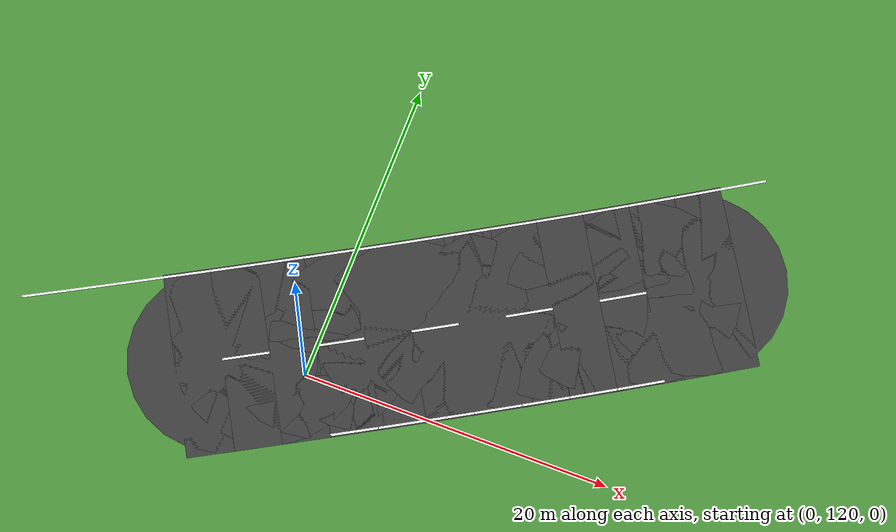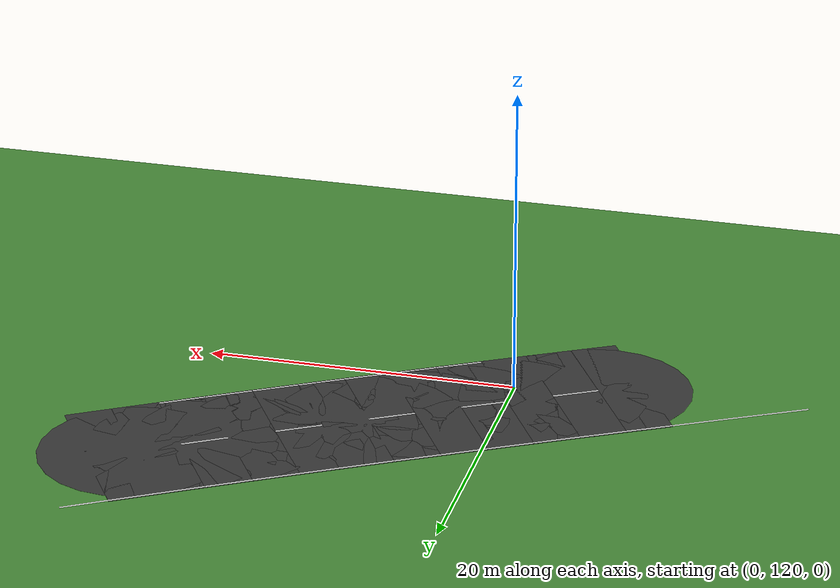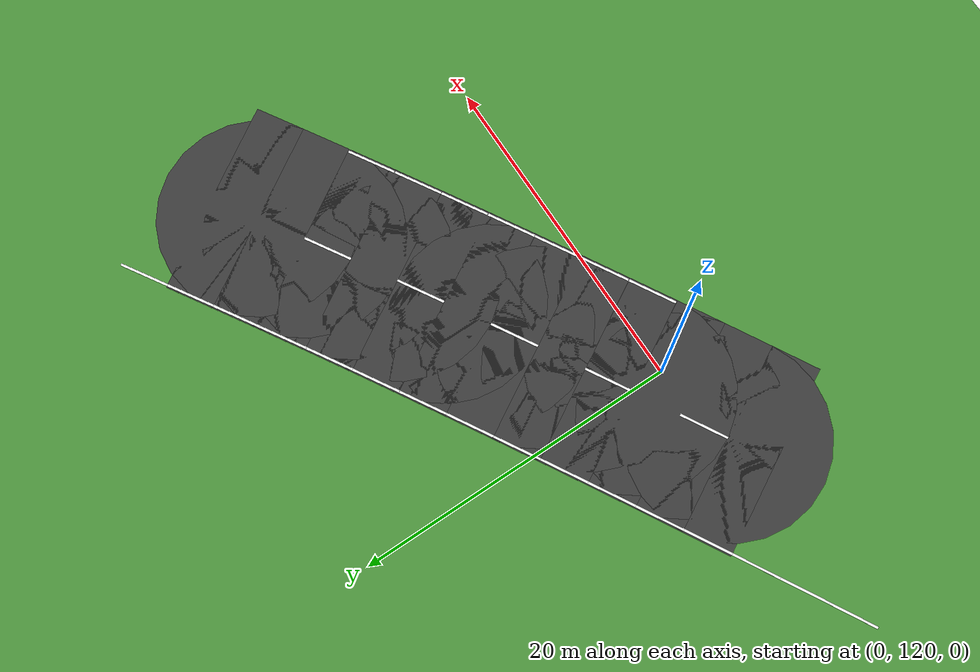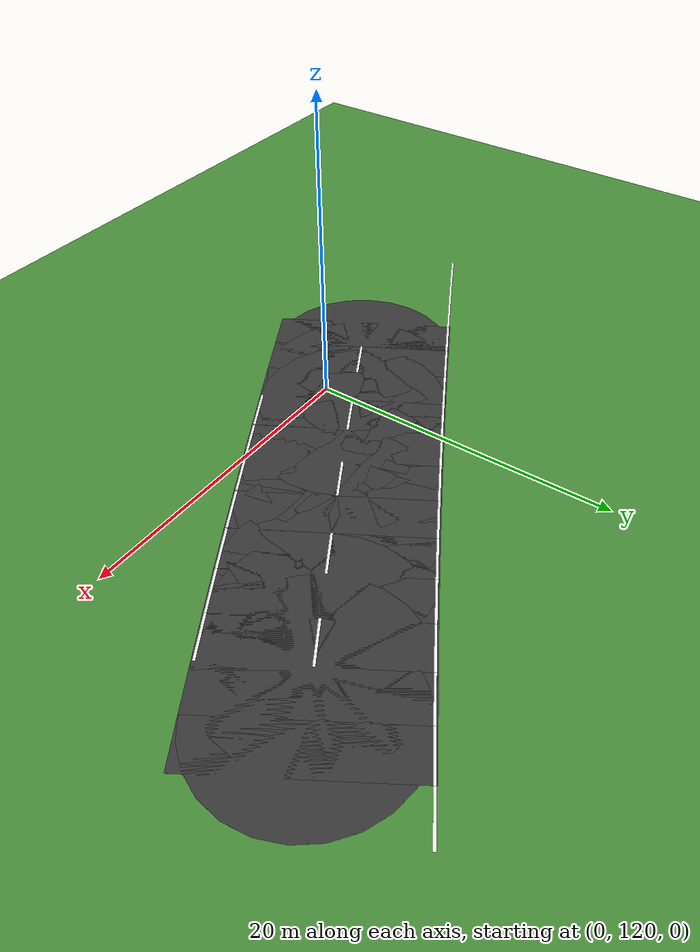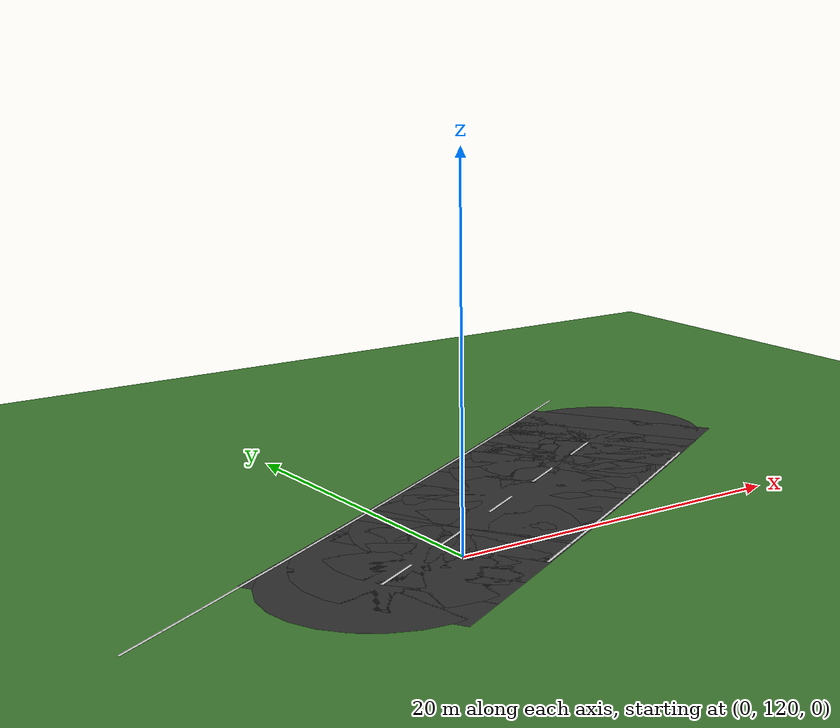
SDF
<sdf version="1.6">
 <world name="sem_silesia_ring_2026">
  <model name="ground_plane">
   <static>true</static>
   <link name="link">
    <collision name="collision">
     <geometry><plane><normal>0 0 1</normal><size>1200 1200</size></plane></geometry>
     <surface><friction><ode><mu>0.6</mu><mu2>0.6</mu2></ode></friction></surface>
    </collision>
    <visual name="visual">
     <geometry><plane><normal>0 0 1</normal><size>1200 1200</size></plane></geometry>
     <material><ambient>0.28 0.55 0.22 1</ambient><diffuse>0.28 0.55 0.22 1</diffuse></material>
    </visual>
   </link>
  </model>
  <model name="wl_R_s311">
   <static>true</static>
   <pose>21.3945 141.5919 0.0070 0 0 -2.5862</pose>
   <link name="link">
    <visual name="v">
     <geometry><box><size>3.0025 0.1500 0.0080</size></box></geometry>
     <material><ambient>0.95 0.95 0.95 1</ambient><diffuse>0.95 0.95 0.95 1</diffuse></material>
    </visual>
   </link>
  </model>
  <model name="road_s312">
   <static>true</static>
   <pose>21.9260 135.0409 0.0030 0 0 -2.5885</pose>
   <link name="link">
    <visual name="v">
     <geometry><box><size>3.0025 12.0000 0.0060</size></box></geometry>
     <material><ambient>0.22 0.22 0.22 1</ambient><diffuse>0.22 0.22 0.22 1</diffuse></material>
    </visual>
    <collision name="c">
     <geometry><box><size>3.0025 12.0000 0.0060</size></box></geometry>
     <surface><friction><ode><mu>0.9</mu><mu2>0.9</mu2></ode></friction></surface>
    </collision>
   </link>
  </model>
  <model name="wl_R_s312">
   <static>true</static>
   <pose>18.8527 140.0186 0.0070 0 0 -2.5885</pose>
   <link name="link">
    <visual name="v">
     <geometry><box><size>3.0025 0.1500 0.0080</size></box></geometry>
     <material><ambient>0.95 0.95 0.95 1</ambient><diffuse>0.95 0.95 0.95 1</diffuse></material>
    </visual>
   </link>
  </model>
  <model name="road_s313">
   <static>true</static>
   <pose>19.3685 133.4679 0.0030 0 0 -2.5919</pose>
   <link name="link">
    <visual name="v">
     <geometry><box><size>3.0025 12.0000 0.0060</size></box></geometry>
     <material><ambient>0.22 0.22 0.22 1</ambient><diffuse>0.22 0.22 0.22 1</diffuse></material>
    </visual>
    <collision name="c">
     <geometry><box><size>3.0025 12.0000 0.0060</size></box></geometry>
     <surface><friction><ode><mu>0.9</mu><mu2>0.9</mu2></ode></friction></surface>
    </collision>
   </link>
  </model>
  <model name="road_jnt313">
   <static>true</static>
   <pose>20.6486 134.2522 0.0030 0 0 0</pose>
   <link name="link">
    <visual name="v">
     <geometry><cylinder><radius>6.0000</radius><length>0.0060</length></cylinder></geometry>
     <material><ambient>0.22 0.22 0.22 1</ambient><diffuse>0.22 0.22 0.22 1</diffuse></material>
    </visual>
    <collision name="c">
     <geometry><cylinder><radius>6.0000</radius><length>0.0060</length></cylinder></geometry>
     <surface><friction><ode><mu>0.9</mu><mu2>0.9</mu2></ode></friction></surface>
    </collision>
   </link>
  </model>
  <model name="wl_R_s313">
   <static>true</static>
   <pose>16.3122 138.4560 0.0070 0 0 -2.5919</pose>
   <link name="link">
    <visual name="v">
     <geometry><box><size>3.0025 0.1500 0.0080</size></box></geometry>
     <material><ambient>0.95 0.95 0.95 1</ambient><diffuse>0.95 0.95 0.95 1</diffuse></material>
    </visual>
   </link>
  </model>
  <model name="road_s314">
   <static>true</static>
   <pose>16.8048 131.9050 0.0030 0 0 -2.5964</pose>
   <link name="link">
    <visual name="v">
     <geometry><box><size>3.0025 12.0000 0.0060</size></box></geometry>
     <material><ambient>0.22 0.22 0.22 1</ambient><diffuse>0.22 0.22 0.22 1</diffuse></material>
    </visual>
    <collision name="c">
     <geometry><box><size>3.0025 12.0000 0.0060</size></box></geometry>
     <surface><friction><ode><mu>0.9</mu><mu2>0.9</mu2></ode></friction></surface>
    </collision>
   </link>
  </model>
  <model name="road_jnt314">
   <static>true</static>
   <pose>18.0884 132.6836 0.0030 0 0 0</pose>
   <link name="link">
    <visual name="v">
     <geometry><cylinder><radius>6.0000</radius><length>0.0060</length></cylinder></geometry>
     <material><ambient>0.22 0.22 0.22 1</ambient><diffuse>0.22 0.22 0.22 1</diffuse></material>
    </visual>
    <collision name="c">
     <geometry><cylinder><radius>6.0000</radius><length>0.0060</length></cylinder></geometry>
     <surface><friction><ode><mu>0.9</mu><mu2>0.9</mu2></ode></friction></surface>
    </collision>
   </link>
  </model>
  <model name="wl_L_s314">
   <static>true</static>
   <pose>19.8384 126.9031 0.0070 0 0 -2.5964</pose>
   <link name="link">
    <visual name="v">
     <geometry><box><size>3.0025 0.1500 0.0080</size></box></geometry>
     <material><ambient>0.95 0.95 0.95 1</ambient><diffuse>0.95 0.95 0.95 1</diffuse></material>
    </visual>
   </link>
  </model>
  <model name="wl_R_s314">
   <static>true</static>
   <pose>13.7711 136.9070 0.0070 0 0 -2.5964</pose>
   <link name="link">
    <visual name="v">
     <geometry><box><size>3.0025 0.1500 0.0080</size></box></geometry>
     <material><ambient>0.95 0.95 0.95 1</ambient><diffuse>0.95 0.95 0.95 1</diffuse></material>
    </visual>
   </link>
  </model>
  <model name="cd_s314">
   <static>true</static>
   <pose>16.8048 131.9050 0.0070 0 0 -2.5964</pose>
   <link name="link">
    <visual name="v">
     <geometry><box><size>3.0025 0.1500 0.0080</size></box></geometry>
     <material><ambient>0.95 0.95 0.95 1</ambient><diffuse>0.95 0.95 0.95 1</diffuse></material>
    </visual>
   </link>
  </model>
  <model name="road_s315">
   <static>true</static>
   <pose>14.2337 130.3543 0.0030 0 0 -2.6013</pose>
   <link name="link">
    <visual name="v">
     <geometry><box><size>3.0025 12.0000 0.0060</size></box></geometry>
     <material><ambient>0.22 0.22 0.22 1</ambient><diffuse>0.22 0.22 0.22 1</diffuse></material>
    </visual>
    <collision name="c">
     <geometry><box><size>3.0025 12.0000 0.0060</size></box></geometry>
     <surface><friction><ode><mu>0.9</mu><mu2>0.9</mu2></ode></friction></surface>
    </collision>
   </link>
  </model>
  <model name="road_jnt315">
   <static>true</static>
   <pose>15.5211 131.1265 0.0030 0 0 0</pose>
   <link name="link">
    <visual name="v">
     <geometry><cylinder><radius>6.0000</radius><length>0.0060</length></cylinder></geometry>
     <material><ambient>0.22 0.22 0.22 1</ambient><diffuse>0.22 0.22 0.22 1</diffuse></material>
    </visual>
    <collision name="c">
     <geometry><cylinder><radius>6.0000</radius><length>0.0060</length></cylinder></geometry>
     <surface><friction><ode><mu>0.9</mu><mu2>0.9</mu2></ode></friction></surface>
    </collision>
   </link>
  </model>
  <model name="wl_L_s315">
   <static>true</static>
   <pose>17.2427 125.3375 0.0070 0 0 -2.6013</pose>
   <link name="link">
    <visual name="v">
     <geometry><box><size>3.0025 0.1500 0.0080</size></box></geometry>
     <material><ambient>0.95 0.95 0.95 1</ambient><diffuse>0.95 0.95 0.95 1</diffuse></material>
    </visual>
   </link>
  </model>
  <model name="wl_R_s315">
   <static>true</static>
   <pose>11.2247 135.3711 0.0070 0 0 -2.6013</pose>
   <link name="link">
    <visual name="v">
     <geometry><box><size>3.0025 0.1500 0.0080</size></box></geometry>
     <material><ambient>0.95 0.95 0.95 1</ambient><diffuse>0.95 0.95 0.95 1</diffuse></material>
    </visual>
   </link>
  </model>
  <model name="road_s316">
   <static>true</static>
   <pose>11.6552 128.8159 0.0030 0 0 -2.6060</pose>
   <link name="link">
    <visual name="v">
     <geometry><box><size>3.0025 12.0000 0.0060</size></box></geometry>
     <material><ambient>0.22 0.22 0.22 1</ambient><diffuse>0.22 0.22 0.22 1</diffuse></material>
    </visual>
    <collision name="c">
     <geometry><box><size>3.0025 12.0000 0.0060</size></box></geometry>
     <surface><friction><ode><mu>0.9</mu><mu2>0.9</mu2></ode></friction></surface>
    </collision>
   </link>
  </model>
  <model name="road_jnt316">
   <static>true</static>
   <pose>12.9462 129.5821 0.0030 0 0 0</pose>
   <link name="link">
    <visual name="v">
     <geometry><cylinder><radius>6.0000</radius><length>0.0060</length></cylinder></geometry>
     <material><ambient>0.22 0.22 0.22 1</ambient><diffuse>0.22 0.22 0.22 1</diffuse></material>
    </visual>
    <collision name="c">
     <geometry><cylinder><radius>6.0000</radius><length>0.0060</length></cylinder></geometry>
     <surface><friction><ode><mu>0.9</mu><mu2>0.9</mu2></ode></friction></surface>
    </collision>
   </link>
  </model>
  <model name="wl_L_s316">
   <static>true</static>
   <pose>14.6409 123.7852 0.0070 0 0 -2.6060</pose>
   <link name="link">
    <visual name="v">
     <geometry><box><size>3.0025 0.1500 0.0080</size></box></geometry>
     <material><ambient>0.95 0.95 0.95 1</ambient><diffuse>0.95 0.95 0.95 1</diffuse></material>
    </visual>
   </link>
  </model>
  <model name="wl_R_s316">
   <static>true</static>
   <pose>8.6696 133.8467 0.0070 0 0 -2.6060</pose>
   <link name="link">
    <visual name="v">
     <geometry><box><size>3.0025 0.1500 0.0080</size></box></geometry>
     <material><ambient>0.95 0.95 0.95 1</ambient><diffuse>0.95 0.95 0.95 1</diffuse></material>
    </visual>
   </link>
  </model>
  <model name="cd_s316">
   <static>true</static>
   <pose>11.6552 128.8159 0.0070 0 0 -2.6060</pose>
   <link name="link">
    <visual name="v">
     <geometry><box><size>3.0025 0.1500 0.0080</size></box></geometry>
     <material><ambient>0.95 0.95 0.95 1</ambient><diffuse>0.95 0.95 0.95 1</diffuse></material>
    </visual>
   </link>
  </model>
  <model name="road_s317">
   <static>true</static>
   <pose>9.0698 127.2892 0.0030 0 0 -2.6103</pose>
   <link name="link">
    <visual name="v">
     <geometry><box><size>3.0025 12.0000 0.0060</size></box></geometry>
     <material><ambient>0.22 0.22 0.22 1</ambient><diffuse>0.22 0.22 0.22 1</diffuse></material>
    </visual>
    <collision name="c">
     <geometry><box><size>3.0025 12.0000 0.0060</size></box></geometry>
     <surface><friction><ode><mu>0.9</mu><mu2>0.9</mu2></ode></friction></surface>
    </collision>
   </link>
  </model>
  <model name="road_jnt317">
   <static>true</static>
   <pose>10.3642 128.0497 0.0030 0 0 0</pose>
   <link name="link">
    <visual name="v">
     <geometry><cylinder><radius>6.0000</radius><length>0.0060</length></cylinder></geometry>
     <material><ambient>0.22 0.22 0.22 1</ambient><diffuse>0.22 0.22 0.22 1</diffuse></material>
    </visual>
    <collision name="c">
     <geometry><cylinder><radius>6.0000</radius><length>0.0060</length></cylinder></geometry>
     <surface><friction><ode><mu>0.9</mu><mu2>0.9</mu2></ode></friction></surface>
    </collision>
   </link>
  </model>
  <model name="wl_L_s317">
   <static>true</static>
   <pose>12.0335 122.2454 0.0070 0 0 -2.6103</pose>
   <link name="link">
    <visual name="v">
     <geometry><box><size>3.0025 0.1500 0.0080</size></box></geometry>
     <material><ambient>0.95 0.95 0.95 1</ambient><diffuse>0.95 0.95 0.95 1</diffuse></material>
    </visual>
   </link>
  </model>
  <model name="wl_R_s317">
   <static>true</static>
   <pose>6.1062 132.3329 0.0070 0 0 -2.6103</pose>
   <link name="link">
    <visual name="v">
     <geometry><box><size>3.0025 0.1500 0.0080</size></box></geometry>
     <material><ambient>0.95 0.95 0.95 1</ambient><diffuse>0.95 0.95 0.95 1</diffuse></material>
    </visual>
   </link>
  </model>
  <model name="road_s318">
   <static>true</static>
   <pose>6.4780 125.7733 0.0030 0 0 -2.6144</pose>
   <link name="link">
    <visual name="v">
     <geometry><box><size>3.0025 12.0000 0.0060</size></box></geometry>
     <material><ambient>0.22 0.22 0.22 1</ambient><diffuse>0.22 0.22 0.22 1</diffuse></material>
    </visual>
    <collision name="c">
     <geometry><box><size>3.0025 12.0000 0.0060</size></box></geometry>
     <surface><friction><ode><mu>0.9</mu><mu2>0.9</mu2></ode></friction></surface>
    </collision>
   </link>
  </model>
  <model name="road_jnt318">
   <static>true</static>
   <pose>7.7755 126.5286 0.0030 0 0 0</pose>
   <link name="link">
    <visual name="v">
     <geometry><cylinder><radius>6.0000</radius><length>0.0060</length></cylinder></geometry>
     <material><ambient>0.22 0.22 0.22 1</ambient><diffuse>0.22 0.22 0.22 1</diffuse></material>
    </visual>
    <collision name="c">
     <geometry><cylinder><radius>6.0000</radius><length>0.0060</length></cylinder></geometry>
     <surface><friction><ode><mu>0.9</mu><mu2>0.9</mu2></ode></friction></surface>
    </collision>
   </link>
  </model>
  <model name="wl_L_s318">
   <static>true</static>
   <pose>9.4211 120.7176 0.0070 0 0 -2.6144</pose>
   <link name="link">
    <visual name="v">
     <geometry><box><size>3.0025 0.1500 0.0080</size></box></geometry>
     <material><ambient>0.95 0.95 0.95 1</ambient><diffuse>0.95 0.95 0.95 1</diffuse></material>
    </visual>
   </link>
  </model>
  <model name="wl_R_s318">
   <static>true</static>
   <pose>3.5349 130.8291 0.0070 0 0 -2.6144</pose>
   <link name="link">
    <visual name="v">
     <geometry><box><size>3.0025 0.1500 0.0080</size></box></geometry>
     <material><ambient>0.95 0.95 0.95 1</ambient><diffuse>0.95 0.95 0.95 1</diffuse></material>
    </visual>
   </link>
  </model>
  <model name="cd_s318">
   <static>true</static>
   <pose>6.4780 125.7733 0.0070 0 0 -2.6144</pose>
   <link name="link">
    <visual name="v">
     <geometry><box><size>3.0025 0.1500 0.0080</size></box></geometry>
     <material><ambient>0.95 0.95 0.95 1</ambient><diffuse>0.95 0.95 0.95 1</diffuse></material>
    </visual>
   </link>
  </model>
  <model name="road_s319">
   <static>true</static>
   <pose>3.8803 124.2677 0.0030 0 0 -2.6182</pose>
   <link name="link">
    <visual name="v">
     <geometry><box><size>3.0025 12.0000 0.0060</size></box></geometry>
     <material><ambient>0.22 0.22 0.22 1</ambient><diffuse>0.22 0.22 0.22 1</diffuse></material>
    </visual>
    <collision name="c">
     <geometry><box><size>3.0025 12.0000 0.0060</size></box></geometry>
     <surface><friction><ode><mu>0.9</mu><mu2>0.9</mu2></ode></friction></surface>
    </collision>
   </link>
  </model>
  <model name="road_jnt319">
   <static>true</static>
   <pose>5.1806 125.0181 0.0030 0 0 0</pose>
   <link name="link">
    <visual name="v">
     <geometry><cylinder><radius>6.0000</radius><length>0.0060</length></cylinder></geometry>
     <material><ambient>0.22 0.22 0.22 1</ambient><diffuse>0.22 0.22 0.22 1</diffuse></material>
    </visual>
    <collision name="c">
     <geometry><cylinder><radius>6.0000</radius><length>0.0060</length></cylinder></geometry>
     <surface><friction><ode><mu>0.9</mu><mu2>0.9</mu2></ode></friction></surface>
    </collision>
   </link>
  </model>
  <model name="wl_L_s319">
   <static>true</static>
   <pose>6.8043 119.2008 0.0070 0 0 -2.6182</pose>
   <link name="link">
    <visual name="v">
     <geometry><box><size>3.0025 0.1500 0.0080</size></box></geometry>
     <material><ambient>0.95 0.95 0.95 1</ambient><diffuse>0.95 0.95 0.95 1</diffuse></material>
    </visual>
   </link>
  </model>
  <model name="wl_R_s319">
   <static>true</static>
   <pose>0.9563 129.3345 0.0070 0 0 -2.6182</pose>
   <link name="link">
    <visual name="v">
     <geometry><box><size>3.0025 0.1500 0.0080</size></box></geometry>
     <material><ambient>0.95 0.95 0.95 1</ambient><diffuse>0.95 0.95 0.95 1</diffuse></material>
    </visual>
   </link>
  </model>
  <model name="road_s320">
   <static>true</static>
   <pose>1.2771 122.7715 0.0030 0 0 -2.6217</pose>
   <link name="link">
    <visual name="v">
     <geometry><box><size>3.0025 12.0000 0.0060</size></box></geometry>
     <material><ambient>0.22 0.22 0.22 1</ambient><diffuse>0.22 0.22 0.22 1</diffuse></material>
    </visual>
    <collision name="c">
     <geometry><box><size>3.0025 12.0000 0.0060</size></box></geometry>
     <surface><friction><ode><mu>0.9</mu><mu2>0.9</mu2></ode></friction></surface>
    </collision>
   </link>
  </model>
  <model name="road_jnt320">
   <static>true</static>
   <pose>2.5800 123.5173 0.0030 0 0 0</pose>
   <link name="link">
    <visual name="v">
     <geometry><cylinder><radius>6.0000</radius><length>0.0060</length></cylinder></geometry>
     <material><ambient>0.22 0.22 0.22 1</ambient><diffuse>0.22 0.22 0.22 1</diffuse></material>
    </visual>
    <collision name="c">
     <geometry><cylinder><radius>6.0000</radius><length>0.0060</length></cylinder></geometry>
     <surface><friction><ode><mu>0.9</mu><mu2>0.9</mu2></ode></friction></surface>
    </collision>
   </link>
  </model>
  <model name="wl_L_s320">
   <static>true</static>
   <pose>4.1834 117.6945 0.0070 0 0 -2.6217</pose>
   <link name="link">
    <visual name="v">
     <geometry><box><size>3.0025 0.1500 0.0080</size></box></geometry>
     <material><ambient>0.95 0.95 0.95 1</ambient><diffuse>0.95 0.95 0.95 1</diffuse></material>
    </visual>
   </link>
  </model>
  <model name="wl_R_s320">
   <static>true</static>
   <pose>-1.6291 127.8485 0.0070 0 0 -2.6217</pose>
   <link name="link">
    <visual name="v">
     <geometry><box><size>3.0025 0.1500 0.0080</size></box></geometry>
     <material><ambient>0.95 0.95 0.95 1</ambient><diffuse>0.95 0.95 0.95 1</diffuse></material>
    </visual>
   </link>
  </model>
  <model name="cd_s320">
   <static>true</static>
   <pose>1.2771 122.7715 0.0070 0 0 -2.6217</pose>
   <link name="link">
    <visual name="v">
     <geometry><box><size>3.0025 0.1500 0.0080</size></box></geometry>
     <material><ambient>0.95 0.95 0.95 1</ambient><diffuse>0.95 0.95 0.95 1</diffuse></material>
    </visual>
   </link>
  </model>
  <model name="road_s321">
   <static>true</static>
   <pose>-1.3311 121.2840 0.0030 0 0 -2.6249</pose>
   <link name="link">
    <visual name="v">
     <geometry><box><size>3.0025 12.0000 0.0060</size></box></geometry>
     <material><ambient>0.22 0.22 0.22 1</ambient><diffuse>0.22 0.22 0.22 1</diffuse></material>
    </visual>
    <collision name="c">
     <geometry><box><size>3.0025 12.0000 0.0060</size></box></geometry>
     <surface><friction><ode><mu>0.9</mu><mu2>0.9</mu2></ode></friction></surface>
    </collision>
   </link>
  </model>
  <model name="road_jnt321">
   <static>true</static>
   <pose>-0.0258 122.0257 0.0030 0 0 0</pose>
   <link name="link">
    <visual name="v">
     <geometry><cylinder><radius>6.0000</radius><length>0.0060</length></cylinder></geometry>
     <material><ambient>0.22 0.22 0.22 1</ambient><diffuse>0.22 0.22 0.22 1</diffuse></material>
    </visual>
    <collision name="c">
     <geometry><cylinder><radius>6.0000</radius><length>0.0060</length></cylinder></geometry>
     <surface><friction><ode><mu>0.9</mu><mu2>0.9</mu2></ode></friction></surface>
    </collision>
   </link>
  </model>
  <model name="wl_R_s321">
   <static>true</static>
   <pose>-4.2210 126.3704 0.0070 0 0 -2.6249</pose>
   <link name="link">
    <visual name="v">
     <geometry><box><size>3.0025 0.1500 0.0080</size></box></geometry>
     <material><ambient>0.95 0.95 0.95 1</ambient><diffuse>0.95 0.95 0.95 1</diffuse></material>
    </visual>
   </link>
  </model>
  <model name="road_s322">
   <static>true</static>
   <pose>-3.9438 119.8046 0.0030 0 0 -2.6278</pose>
   <link name="link">
    <visual name="v">
     <geometry><box><size>3.0025 12.0000 0.0060</size></box></geometry>
     <material><ambient>0.22 0.22 0.22 1</ambient><diffuse>0.22 0.22 0.22 1</diffuse></material>
    </visual>
    <collision name="c">
     <geometry><box><size>3.0025 12.0000 0.0060</size></box></geometry>
     <surface><friction><ode><mu>0.9</mu><mu2>0.9</mu2></ode></friction></surface>
    </collision>
   </link>
  </model>
  <model name="road_jnt322">
   <static>true</static>
   <pose>-2.6364 120.5424 0.0030 0 0 0</pose>
   <link name="link">
    <visual name="v">
     <geometry><cylinder><radius>6.0000</radius><length>0.0060</length></cylinder></geometry>
     <material><ambient>0.22 0.22 0.22 1</ambient><diffuse>0.22 0.22 0.22 1</diffuse></material>
    </visual>
    <collision name="c">
     <geometry><cylinder><radius>6.0000</radius><length>0.0060</length></cylinder></geometry>
     <surface><friction><ode><mu>0.9</mu><mu2>0.9</mu2></ode></friction></surface>
    </collision>
   </link>
  </model>
  <model name="wl_R_s322">
   <static>true</static>
   <pose>-6.8189 124.8993 0.0070 0 0 -2.6278</pose>
   <link name="link">
    <visual name="v">
     <geometry><box><size>3.0025 0.1500 0.0080</size></box></geometry>
     <material><ambient>0.95 0.95 0.95 1</ambient><diffuse>0.95 0.95 0.95 1</diffuse></material>
    </visual>
   </link>
  </model>
  <model name="cd_s322">
   <static>true</static>
   <pose>-3.9438 119.8046 0.0070 0 0 -2.6278</pose>
   <link name="link">
    <visual name="v">
     <geometry><box><size>3.0025 0.1500 0.0080</size></box></geometry>
     <material><ambient>0.95 0.95 0.95 1</ambient><diffuse>0.95 0.95 0.95 1</diffuse></material>
    </visual>
   </link>
  </model>
  <model name="road_s323">
   <static>true</static>
   <pose>-6.5607 118.3324 0.0030 0 0 -2.6305</pose>
   <link name="link">
    <visual name="v">
     <geometry><box><size>3.0025 12.0000 0.0060</size></box></geometry>
     <material><ambient>0.22 0.22 0.22 1</ambient><diffuse>0.22 0.22 0.22 1</diffuse></material>
    </visual>
    <collision name="c">
     <geometry><box><size>3.0025 12.0000 0.0060</size></box></geometry>
     <surface><friction><ode><mu>0.9</mu><mu2>0.9</mu2></ode></friction></surface>
    </collision>
   </link>
  </model>
  <model name="road_jnt323">
   <static>true</static>
   <pose>-5.2513 119.0668 0.0030 0 0 0</pose>
   <link name="link">
    <visual name="v">
     <geometry><cylinder><radius>6.0000</radius><length>0.0060</length></cylinder></geometry>
     <material><ambient>0.22 0.22 0.22 1</ambient><diffuse>0.22 0.22 0.22 1</diffuse></material>
    </visual>
    <collision name="c">
     <geometry><cylinder><radius>6.0000</radius><length>0.0060</length></cylinder></geometry>
     <surface><friction><ode><mu>0.9</mu><mu2>0.9</mu2></ode></friction></surface>
    </collision>
   </link>
  </model>
  <model name="wl_R_s323">
   <static>true</static>
   <pose>-9.4223 123.4347 0.0070 0 0 -2.6305</pose>
   <link name="link">
    <visual name="v">
     <geometry><box><size>3.0025 0.1500 0.0080</size></box></geometry>
     <material><ambient>0.95 0.95 0.95 1</ambient><diffuse>0.95 0.95 0.95 1</diffuse></material>
    </visual>
   </link>
  </model>
  <model name="wl_R_s324">
   <static>true</static>
   <pose>-12.0305 121.9760 0.0070 0 0 -2.6329</pose>
   <link name="link">
    <visual name="v">
     <geometry><box><size>3.0025 0.1500 0.0080</size></box></geometry>
     <material><ambient>0.95 0.95 0.95 1</ambient><diffuse>0.95 0.95 0.95 1</diffuse></material>
    </visual>
   </link>
  </model>
  <model name="wl_R_s325">
   <static>true</static>
   <pose>-14.6412 120.5247 0.0070 0 0 -2.6355</pose>
   <link name="link">
    <visual name="v">
     <geometry><box><size>3.0025 0.1500 0.0080</size></box></geometry>
     <material><ambient>0.95 0.95 0.95 1</ambient><diffuse>0.95 0.95 0.95 1</diffuse></material>
    </visual>
   </link>
  </model>
  <model name="wl_R_s326">
   <static>true</static>
   <pose>-17.2534 119.0824 0.0070 0 0 -2.6387</pose>
   <link name="link">
    <visual name="v">
     <geometry><box><size>3.0025 0.1500 0.0080</size></box></geometry>
     <material><ambient>0.95 0.95 0.95 1</ambient><diffuse>0.95 0.95 0.95 1</diffuse></material>
    </visual>
   </link>
  </model>
 </world>
</sdf>
